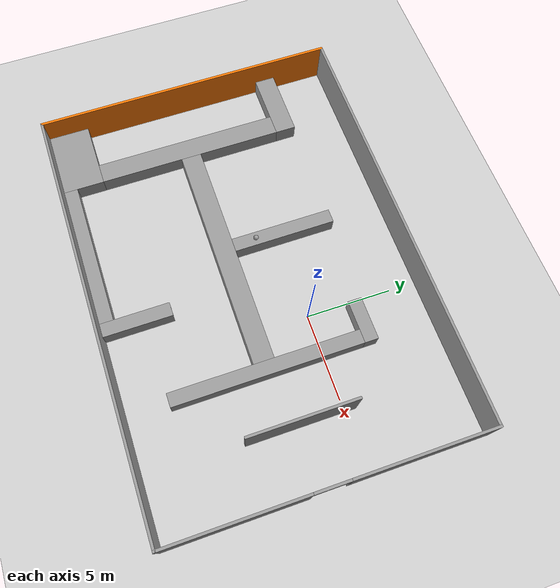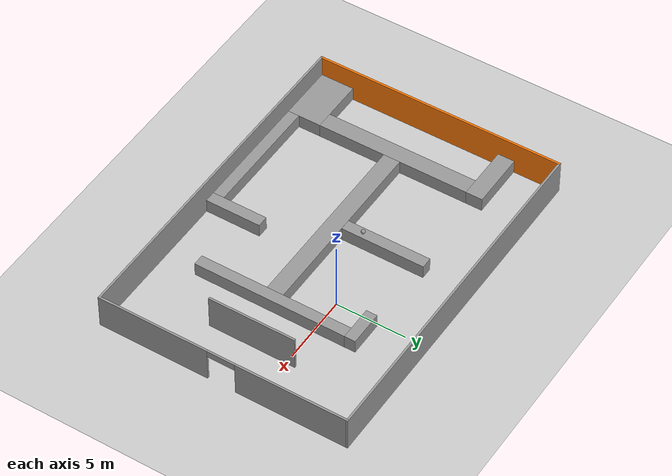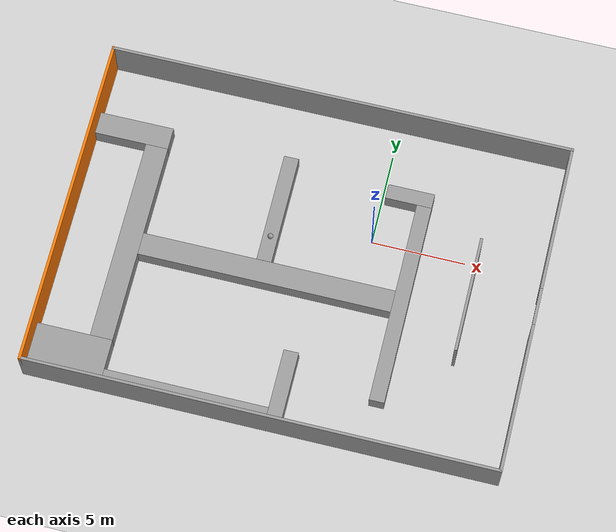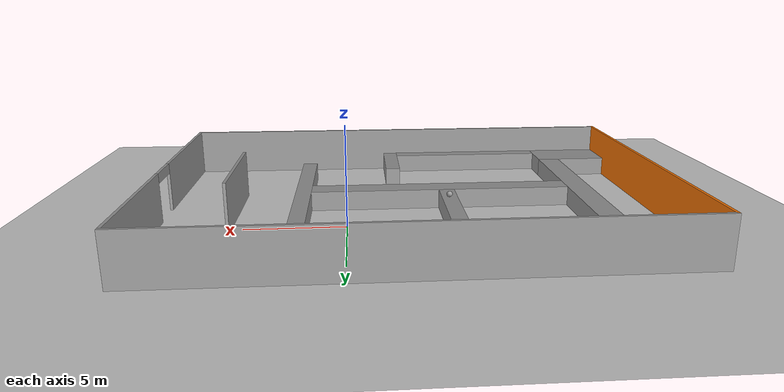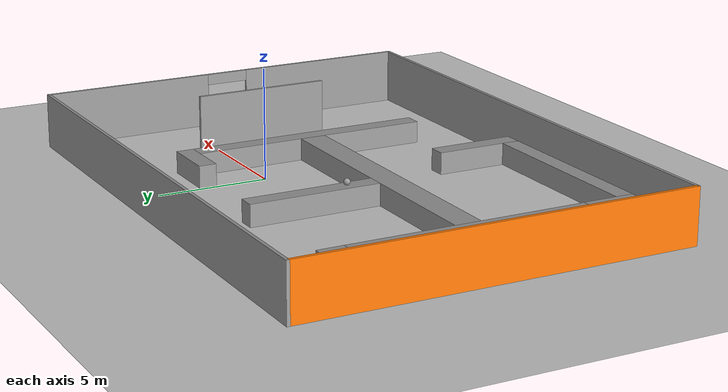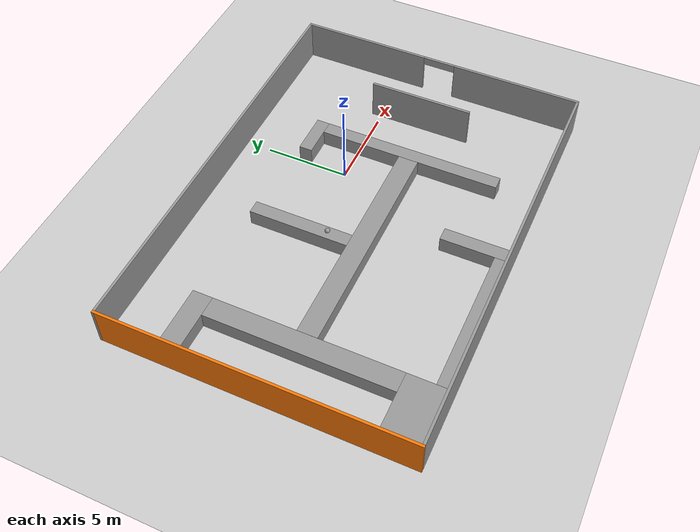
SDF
<sdf version="1.6">
 <world name="default">
  <model name="ground_plane">
   <static>1</static>
   <link name="link">
    <collision name="collision">
     <geometry><plane><normal>0 0 1</normal><size>100 100</size></plane></geometry>
     <surface><friction><ode><mu>100</mu><mu2>50</mu2></ode></friction></surface>
    </collision>
    <visual name="visual">
     <cast_shadows>0</cast_shadows>
     <geometry><plane><normal>0 0 1</normal><size>100 100</size></plane></geometry>
     <material>
      <script><uri>file://media/materials/scripts/gazebo.material</uri><name>Gazebo/Grey</name></script>
     </material>
    </visual>
   </link>
  </model>
  <model name="restaurant">
   <pose>-3.2864 -2.31047 0 0 0 0</pose>
   <link name="Wall_10">
    <collision name="Wall_10_Collision">
     <geometry><box><size>18 0.15 2.5</size></box></geometry>
     <pose>0 0 1.25 0 0 0</pose>
    </collision>
    <visual name="Wall_10_Visual">
     <pose>0 0 1.25 0 0 0</pose>
     <geometry><box><size>18 0.15 2.5</size></box></geometry>
     <material>
      <script><uri>file://media/materials/scripts/gazebo.material</uri><name>Gazebo/Grey</name></script>
      <ambient>0.996078 0.47451 0.0196078 1</ambient>
     </material>
     <meta><layer>0</layer></meta>
    </visual>
    <pose>-12.425 -0.0001 0 0 0 -1.5708</pose>
   </link>
   <link name="Wall_12">
    <collision name="Wall_12_Collision">
     <geometry><box><size>25 0.15 2.5</size></box></geometry>
     <pose>0 0 1.25 0 0 0</pose>
    </collision>
    <visual name="Wall_12_Visual">
     <pose>0 0 1.25 0 0 0</pose>
     <geometry><box><size>25 0.15 2.5</size></box></geometry>
     <material>
      <script><uri>file://media/materials/scripts/gazebo.material</uri><name>Gazebo/Grey</name></script>
      <ambient>1 1 1 1</ambient>
     </material>
     <meta><layer>0</layer></meta>
    </visual>
    <pose>-1e-06 -8.9251 0 0 0 0</pose>
   </link>
   <link name="Wall_14">
    <pose>12.425 1e-05 0 0 0 1.5708</pose>
    <visual name="Wall_14_Visual_0">
     <pose>-5.00641 0 1.25 0 0 0</pose>
     <geometry><box><size>7.98717 0.15 2.5</size></box></geometry>
     <material>
      <script><uri>file://media/materials/scripts/gazebo.material</uri><name>Gazebo/Grey</name></script>
      <ambient>1 1 1 1</ambient>
     </material>
     <meta><layer>0</layer></meta>
    </visual>
    <collision name="Wall_14_Collision_0">
     <geometry><box><size>7.98717 0.15 2.5</size></box></geometry>
     <pose>-5.00641 0 1.25 0 0 0</pose>
    </collision>
    <visual name="Wall_14_Visual_1">
     <pose>4.99359 0 1.25 0 0 0</pose>
     <geometry><box><size>8.01282 0.15 2.5</size></box></geometry>
     <material>
      <script><uri>file://media/materials/scripts/gazebo.material</uri><name>Gazebo/Grey</name></script>
      <ambient>1 1 1 1</ambient>
     </material>
     <meta><layer>0</layer></meta>
    </visual>
    <collision name="Wall_14_Collision_1">
     <geometry><box><size>8.01282 0.15 2.5</size></box></geometry>
     <pose>4.99359 0 1.25 0 0 0</pose>
    </collision>
    <visual name="Wall_14_Visual_2">
     <pose>-0.012825 0 2.25 0 0 0</pose>
     <geometry><box><size>2 0.15 0.5</size></box></geometry>
     <material>
      <script><uri>file://media/materials/scripts/gazebo.material</uri><name>Gazebo/Grey</name></script>
      <ambient>1 1 1 1</ambient>
     </material>
     <meta><layer>0</layer></meta>
    </visual>
    <collision name="Wall_14_Collision_2">
     <geometry><box><size>2 0.15 0.5</size></box></geometry>
     <pose>-0.012825 0 2.25 0 0 0</pose>
    </collision>
   </link>
   <link name="Wall_16">
    <collision name="Wall_16_Collision">
     <geometry><box><size>6.25 0.15 2.5</size></box></geometry>
     <pose>0 0 1.25 0 0 0</pose>
    </collision>
    <visual name="Wall_16_Visual">
     <pose>0 0 1.25 0 0 0</pose>
     <geometry><box><size>6.25 0.15 2.5</size></box></geometry>
     <material>
      <script><uri>file://media/materials/scripts/gazebo.material</uri><name>Gazebo/Grey</name></script>
      <ambient>1 1 1 1</ambient>
     </material>
     <meta><layer>0</layer></meta>
    </visual>
    <pose>8.88051 -0.186574 0 0 0 -1.5708</pose>
   </link>
   <link name="Wall_8">
    <collision name="Wall_8_Collision">
     <geometry><box><size>25 0.15 2.5</size></box></geometry>
     <pose>0 0 1.25 0 0 0</pose>
    </collision>
    <visual name="Wall_8_Visual">
     <pose>0 0 1.25 0 0 0</pose>
     <geometry><box><size>25 0.15 2.5</size></box></geometry>
     <material>
      <script><uri>file://media/materials/scripts/gazebo.material</uri><name>Gazebo/Grey</name></script>
      <ambient>1 1 1 1</ambient>
     </material>
     <meta><layer>0</layer></meta>
    </visual>
    <pose>1e-06 8.925 0 0 0 -3.14159</pose>
   </link>
   <static>1</static>
  </model>
  <model name="path">
   <pose>0.2678 -3.26355 0 0 0 0</pose>
   <link name="Wall_18">
    <pose>-12.5035 0.003409 0 0 0 1.5708</pose>
    <inertial>
     <mass>100</mass>
     <inertia><ixx>1</ixx><ixy>0</ixy><ixz>0</ixz><iyy>1</iyy><iyz>0</iyz><izz>1</izz></inertia>
    </inertial>
    <visual name="Wall_18_Visual">
     <pose>0 0 0.5 0 0 0</pose>
     <geometry><box><size>11 1.2 1</size></box></geometry>
     <material>
      <script><uri>file://media/materials/scripts/gazebo.material</uri><name>Gazebo/Grey</name></script>
      <ambient>0 0 0 1</ambient>
      <shader type="pixel"><normal_map>__default__</normal_map></shader>
      <diffuse>0 0 0 1</diffuse>
      <specular>0 0 0 1</specular>
      <emissive>0 0 0 1</emissive>
     </material>
     <meta><layer>0</layer></meta>
    </visual>
    <collision name="Wall_18_Collision">
     <pose>0 0 0.5 0 0 0</pose>
     <geometry><box><size>11 1.2 1</size></box></geometry>
     <surface>
      <friction>
       <ode><mu>1</mu><mu2>1</mu2><fdir1>0 0 0</fdir1><slip1>0</slip1><slip2>0</slip2></ode>
       <torsional>
        <coefficient>1</coefficient>
        <patch_radius>0</patch_radius>
        <surface_radius>0</surface_radius>
        <use_patch_radius>1</use_patch_radius>
        <ode><slip>0</slip></ode>
       </torsional>
      </friction>
      <bounce><restitution_coefficient>0</restitution_coefficient><threshold>1e+06</threshold></bounce>
      <contact>
       <collide_without_contact>0</collide_without_contact>
       <collide_without_contact_bitmask>1</collide_without_contact_bitmask>
       <collide_bitmask>1</collide_bitmask>
       <ode>
        <soft_cfm>0</soft_cfm>
        <soft_erp>0.2</soft_erp>
        <kp>1e+13</kp>
        <kd>1</kd>
        <max_vel>0.01</max_vel>
        <min_depth>0</min_depth>
       </ode>
       <bullet>
        <split_impulse>1</split_impulse>
        <split_impulse_penetration_threshold>-0.01</split_impulse_penetration_threshold>
        <soft_cfm>0</soft_cfm>
        <soft_erp>0.2</soft_erp>
        <kp>1e+13</kp>
        <kd>1</kd>
       </bullet>
      </contact>
     </surface>
    </collision>
   </link>
   <link name="Wall_20">
    <pose>-5.15319 -0.016904 0 0 0 -0.000489</pose>
    <inertial>
     <mass>1</mass>
     <inertia><ixx>1</ixx><ixy>0</ixy><ixz>0</ixz><iyy>1</iyy><iyz>0</iyz><izz>1</izz></inertia>
    </inertial>
    <visual name="Wall_20_Visual">
     <pose>0 0 0.5 0 0 0</pose>
     <geometry><box><size>13.5 1.2 1</size></box></geometry>
     <material>
      <script><uri>file://media/materials/scripts/gazebo.material</uri><name>Gazebo/Grey</name></script>
      <ambient>0 0 0 1</ambient>
      <shader type="pixel"><normal_map>__default__</normal_map></shader>
      <diffuse>0 0 0 1</diffuse>
      <specular>0 0 0 1</specular>
      <emissive>0 0 0 1</emissive>
     </material>
     <meta><layer>0</layer></meta>
    </visual>
    <collision name="Wall_20_Collision">
     <pose>0 0 0.5 0 0 0</pose>
     <geometry><box><size>13.5 1.2 1</size></box></geometry>
     <surface>
      <friction>
       <ode><mu>1</mu><mu2>1</mu2><fdir1>0 0 0</fdir1><slip1>0</slip1><slip2>0</slip2></ode>
       <torsional>
        <coefficient>1</coefficient>
        <patch_radius>0</patch_radius>
        <surface_radius>0</surface_radius>
        <use_patch_radius>1</use_patch_radius>
        <ode><slip>0</slip></ode>
       </torsional>
      </friction>
      <bounce><restitution_coefficient>0</restitution_coefficient><threshold>1e+06</threshold></bounce>
      <contact>
       <collide_without_contact>0</collide_without_contact>
       <collide_without_contact_bitmask>1</collide_without_contact_bitmask>
       <collide_bitmask>1</collide_bitmask>
       <ode>
        <soft_cfm>0</soft_cfm>
        <soft_erp>0.2</soft_erp>
        <kp>1e+13</kp>
        <kd>1</kd>
        <max_vel>0.01</max_vel>
        <min_depth>0</min_depth>
       </ode>
       <bullet>
        <split_impulse>1</split_impulse>
        <split_impulse_penetration_threshold>-0.01</split_impulse_penetration_threshold>
        <soft_cfm>0</soft_cfm>
        <soft_erp>0.2</soft_erp>
        <kp>1e+13</kp>
        <kd>1</kd>
       </bullet>
      </contact>
     </surface>
    </collision>
   </link>
   <link name="Wall_21">
    <pose>1.99706 0.024718 0 0 0 1.57072</pose>
    <inertial>
     <mass>1</mass>
     <inertia><ixx>1</ixx><ixy>0</ixy><ixz>0</ixz><iyy>1</iyy><iyz>0</iyz><izz>1</izz></inertia>
    </inertial>
    <visual name="Wall_21_Visual">
     <pose>0 0 0.5 0 0 0</pose>
     <geometry><box><size>11 0.8 1</size></box></geometry>
     <material>
      <script><uri>file://media/materials/scripts/gazebo.material</uri><name>Gazebo/Grey</name></script>
      <ambient>0 0 0 1</ambient>
      <shader type="pixel"><normal_map>__default__</normal_map></shader>
      <diffuse>0 0 0 1</diffuse>
      <specular>0 0 0 1</specular>
      <emissive>0 0 0 1</emissive>
     </material>
     <meta><layer>0</layer></meta>
    </visual>
    <collision name="Wall_21_Collision">
     <pose>0 0 0.5 0 0 0</pose>
     <geometry><box><size>11 0.8 1</size></box></geometry>
     <surface>
      <friction>
       <ode><mu>1</mu><mu2>1</mu2><fdir1>0 0 0</fdir1><slip1>0</slip1><slip2>0</slip2></ode>
       <torsional>
        <coefficient>1</coefficient>
        <patch_radius>0</patch_radius>
        <surface_radius>0</surface_radius>
        <use_patch_radius>1</use_patch_radius>
        <ode><slip>0</slip></ode>
       </torsional>
      </friction>
      <bounce><restitution_coefficient>0</restitution_coefficient><threshold>1e+06</threshold></bounce>
      <contact>
       <collide_without_contact>0</collide_without_contact>
       <collide_without_contact_bitmask>1</collide_without_contact_bitmask>
       <collide_bitmask>1</collide_bitmask>
       <ode>
        <soft_cfm>0</soft_cfm>
        <soft_erp>0.2</soft_erp>
        <kp>1e+13</kp>
        <kd>1</kd>
        <max_vel>0.01</max_vel>
        <min_depth>0</min_depth>
       </ode>
       <bullet>
        <split_impulse>1</split_impulse>
        <split_impulse_penetration_threshold>-0.01</split_impulse_penetration_threshold>
        <soft_cfm>0</soft_cfm>
        <soft_erp>0.2</soft_erp>
        <kp>1e+13</kp>
        <kd>1</kd>
       </bullet>
      </contact>
     </surface>
    </collision>
   </link>
   <link name="Wall_25">
    <pose>-5.42538 3.58343 0 0 0 1.5708</pose>
    <inertial>
     <mass>1</mass>
     <inertia><ixx>1</ixx><ixy>0</ixy><ixz>0</ixz><iyy>1</iyy><iyz>0</iyz><izz>1</izz></inertia>
    </inertial>
    <visual name="Wall_25_Visual">
     <pose>0 0 0.5 0 0 0</pose>
     <geometry><box><size>6 0.8 1</size></box></geometry>
     <material>
      <script><uri>file://media/materials/scripts/gazebo.material</uri><name>Gazebo/Grey</name></script>
      <ambient>0 0 0 1</ambient>
      <shader type="pixel"><normal_map>__default__</normal_map></shader>
      <diffuse>0 0 0 1</diffuse>
      <specular>0 0 0 1</specular>
      <emissive>0 0 0 1</emissive>
     </material>
     <meta><layer>0</layer></meta>
    </visual>
    <collision name="Wall_25_Collision">
     <pose>0 0 0.5 0 0 0</pose>
     <geometry><box><size>6 0.8 1</size></box></geometry>
     <surface>
      <friction>
       <ode><mu>1</mu><mu2>1</mu2><fdir1>0 0 0</fdir1><slip1>0</slip1><slip2>0</slip2></ode>
       <torsional>
        <coefficient>1</coefficient>
        <patch_radius>0</patch_radius>
        <surface_radius>0</surface_radius>
        <use_patch_radius>1</use_patch_radius>
        <ode><slip>0</slip></ode>
       </torsional>
      </friction>
      <bounce><restitution_coefficient>0</restitution_coefficient><threshold>1e+06</threshold></bounce>
      <contact>
       <collide_without_contact>0</collide_without_contact>
       <collide_without_contact_bitmask>1</collide_without_contact_bitmask>
       <collide_bitmask>1</collide_bitmask>
       <ode>
        <soft_cfm>0</soft_cfm>
        <soft_erp>0.2</soft_erp>
        <kp>1e+13</kp>
        <kd>1</kd>
        <max_vel>0.01</max_vel>
        <min_depth>0</min_depth>
       </ode>
       <bullet>
        <split_impulse>1</split_impulse>
        <split_impulse_penetration_threshold>-0.01</split_impulse_penetration_threshold>
        <soft_cfm>0</soft_cfm>
        <soft_erp>0.2</soft_erp>
        <kp>1e+13</kp>
        <kd>1</kd>
       </bullet>
      </contact>
     </surface>
    </collision>
   </link>
   <link name="Wall_27">
    <pose>-7.5785 -7.49658 0 0 0 0</pose>
    <inertial>
     <mass>1</mass>
     <inertia><ixx>1</ixx><ixy>0</ixy><ixz>0</ixz><iyy>1</iyy><iyz>0</iyz><izz>1</izz></inertia>
    </inertial>
    <visual name="Wall_27_Visual">
     <pose>0 0 0.5 0 0 0</pose>
     <geometry><box><size>8.65 0.8 1</size></box></geometry>
     <material>
      <script><uri>file://media/materials/scripts/gazebo.material</uri><name>Gazebo/Grey</name></script>
      <ambient>0 0 0 1</ambient>
      <shader type="pixel"><normal_map>__default__</normal_map></shader>
      <diffuse>0 0 0 1</diffuse>
      <specular>0 0 0 1</specular>
      <emissive>0 0 0 1</emissive>
     </material>
     <meta><layer>0</layer></meta>
    </visual>
    <collision name="Wall_27_Collision">
     <pose>0 0 0.5 0 0 0</pose>
     <geometry><box><size>8.65 0.8 1</size></box></geometry>
     <surface>
      <friction>
       <ode><mu>1</mu><mu2>1</mu2><fdir1>0 0 0</fdir1><slip1>0</slip1><slip2>0</slip2></ode>
       <torsional>
        <coefficient>1</coefficient>
        <patch_radius>0</patch_radius>
        <surface_radius>0</surface_radius>
        <use_patch_radius>1</use_patch_radius>
        <ode><slip>0</slip></ode>
       </torsional>
      </friction>
      <bounce><restitution_coefficient>0</restitution_coefficient><threshold>1e+06</threshold></bounce>
      <contact>
       <collide_without_contact>0</collide_without_contact>
       <collide_without_contact_bitmask>1</collide_without_contact_bitmask>
       <collide_bitmask>1</collide_bitmask>
       <ode>
        <soft_cfm>0</soft_cfm>
        <soft_erp>0.2</soft_erp>
        <kp>1e+13</kp>
        <kd>1</kd>
        <max_vel>0.01</max_vel>
        <min_depth>0</min_depth>
       </ode>
       <bullet>
        <split_impulse>1</split_impulse>
        <split_impulse_penetration_threshold>-0.01</split_impulse_penetration_threshold>
        <soft_cfm>0</soft_cfm>
        <soft_erp>0.2</soft_erp>
        <kp>1e+13</kp>
        <kd>1</kd>
       </bullet>
      </contact>
     </surface>
    </collision>
   </link>
   <link name="Wall_31">
    <pose>-2.85351 -5.89658 0 0 0 -1.57079</pose>
    <inertial>
     <mass>1</mass>
     <inertia><ixx>1</ixx><ixy>0</ixy><ixz>0</ixz><iyy>1</iyy><iyz>0</iyz><izz>1</izz></inertia>
    </inertial>
    <visual name="Wall_31_Visual">
     <pose>0 0 0.5 0 0 0</pose>
     <geometry><box><size>4 0.8 1</size></box></geometry>
     <material>
      <script><uri>file://media/materials/scripts/gazebo.material</uri><name>Gazebo/Grey</name></script>
      <ambient>0 0 0 1</ambient>
      <shader type="pixel"><normal_map>__default__</normal_map></shader>
      <diffuse>0 0 0 1</diffuse>
      <specular>0 0 0 1</specular>
      <emissive>0 0 0 1</emissive>
     </material>
     <meta><layer>0</layer></meta>
    </visual>
    <collision name="Wall_31_Collision">
     <pose>0 0 0.5 0 0 0</pose>
     <geometry><box><size>4 0.8 1</size></box></geometry>
     <surface>
      <friction>
       <ode><mu>1</mu><mu2>1</mu2><fdir1>0 0 0</fdir1><slip1>0</slip1><slip2>0</slip2></ode>
       <torsional>
        <coefficient>1</coefficient>
        <patch_radius>0</patch_radius>
        <surface_radius>0</surface_radius>
        <use_patch_radius>1</use_patch_radius>
        <ode><slip>0</slip></ode>
       </torsional>
      </friction>
      <bounce><restitution_coefficient>0</restitution_coefficient><threshold>1e+06</threshold></bounce>
      <contact>
       <collide_without_contact>0</collide_without_contact>
       <collide_without_contact_bitmask>1</collide_without_contact_bitmask>
       <collide_bitmask>1</collide_bitmask>
       <ode>
        <soft_cfm>0</soft_cfm>
        <soft_erp>0.2</soft_erp>
        <kp>1e+13</kp>
        <kd>1</kd>
        <max_vel>0.01</max_vel>
        <min_depth>0</min_depth>
       </ode>
       <bullet>
        <split_impulse>1</split_impulse>
        <split_impulse_penetration_threshold>-0.01</split_impulse_penetration_threshold>
        <soft_cfm>0</soft_cfm>
        <soft_erp>0.2</soft_erp>
        <kp>1e+13</kp>
        <kd>1</kd>
       </bullet>
      </contact>
     </surface>
    </collision>
   </link>
   <link name="Wall_35">
    <pose>1.1473 5.91911 0 0 0 0.000465</pose>
    <inertial>
     <mass>1</mass>
     <inertia><ixx>1</ixx><ixy>0</ixy><ixz>0</ixz><iyy>1</iyy><iyz>0</iyz><izz>1</izz></inertia>
    </inertial>
    <visual name="Wall_35_Visual">
     <pose>0 0 0.5 0 0 0</pose>
     <geometry><box><size>2.5 0.79 1</size></box></geometry>
     <material>
      <script><uri>file://media/materials/scripts/gazebo.material</uri><name>Gazebo/Grey</name></script>
      <ambient>0 0 0 1</ambient>
      <shader type="pixel"><normal_map>__default__</normal_map></shader>
      <diffuse>0 0 0 1</diffuse>
      <specular>0 0 0 1</specular>
      <emissive>0 0 0 1</emissive>
     </material>
     <meta><layer>0</layer></meta>
    </visual>
    <collision name="Wall_35_Collision">
     <pose>0 0 0.5 0 0 0</pose>
     <geometry><box><size>2.5 0.8 1</size></box></geometry>
     <surface>
      <friction>
       <ode><mu>1</mu><mu2>1</mu2><fdir1>0 0 0</fdir1><slip1>0</slip1><slip2>0</slip2></ode>
       <torsional>
        <coefficient>1</coefficient>
        <patch_radius>0</patch_radius>
        <surface_radius>0</surface_radius>
        <use_patch_radius>1</use_patch_radius>
        <ode><slip>0</slip></ode>
       </torsional>
      </friction>
      <bounce><restitution_coefficient>0</restitution_coefficient><threshold>1e+06</threshold></bounce>
      <contact>
       <collide_without_contact>0</collide_without_contact>
       <collide_without_contact_bitmask>1</collide_without_contact_bitmask>
       <collide_bitmask>1</collide_bitmask>
       <ode>
        <soft_cfm>0</soft_cfm>
        <soft_erp>0.2</soft_erp>
        <kp>1e+13</kp>
        <kd>1</kd>
        <max_vel>0.01</max_vel>
        <min_depth>0</min_depth>
       </ode>
       <bullet>
        <split_impulse>1</split_impulse>
        <split_impulse_penetration_threshold>-0.01</split_impulse_penetration_threshold>
        <soft_cfm>0</soft_cfm>
        <soft_erp>0.2</soft_erp>
        <kp>1e+13</kp>
        <kd>1</kd>
       </bullet>
      </contact>
     </surface>
    </collision>
   </link>
   <link name="Wall_44">
    <pose>-13.9035 6.10342 0 0 0 3.14159</pose>
    <inertial>
     <mass>1</mass>
     <inertia><ixx>1</ixx><ixy>0</ixy><ixz>0</ixz><iyy>1</iyy><iyz>0</iyz><izz>1</izz></inertia>
    </inertial>
    <visual name="Wall_44_Visual">
     <pose>0 0 0.5 0 0 0</pose>
     <geometry><box><size>4 1.2 1</size></box></geometry>
     <material>
      <script><uri>file://media/materials/scripts/gazebo.material</uri><name>Gazebo/Grey</name></script>
      <ambient>0 0 0 1</ambient>
      <shader type="pixel"><normal_map>__default__</normal_map></shader>
      <diffuse>0 0 0 1</diffuse>
      <specular>0 0 0 1</specular>
      <emissive>0 0 0 1</emissive>
     </material>
     <meta><layer>0</layer></meta>
    </visual>
    <collision name="Wall_44_Collision">
     <pose>0 0 0.5 0 0 0</pose>
     <geometry><box><size>4 1.2 1</size></box></geometry>
     <surface>
      <friction>
       <ode><mu>1</mu><mu2>1</mu2><fdir1>0 0 0</fdir1><slip1>0</slip1><slip2>0</slip2></ode>
       <torsional>
        <coefficient>1</coefficient>
        <patch_radius>0</patch_radius>
        <surface_radius>0</surface_radius>
        <use_patch_radius>1</use_patch_radius>
        <ode><slip>0</slip></ode>
       </torsional>
      </friction>
      <bounce><restitution_coefficient>0</restitution_coefficient><threshold>1e+06</threshold></bounce>
      <contact>
       <collide_without_contact>0</collide_without_contact>
       <collide_without_contact_bitmask>1</collide_without_contact_bitmask>
       <collide_bitmask>1</collide_bitmask>
       <ode>
        <soft_cfm>0</soft_cfm>
        <soft_erp>0.2</soft_erp>
        <kp>1e+13</kp>
        <kd>1</kd>
        <max_vel>0.01</max_vel>
        <min_depth>0</min_depth>
       </ode>
       <bullet>
        <split_impulse>1</split_impulse>
        <split_impulse_penetration_threshold>-0.01</split_impulse_penetration_threshold>
        <soft_cfm>0</soft_cfm>
        <soft_erp>0.2</soft_erp>
        <kp>1e+13</kp>
        <kd>1</kd>
       </bullet>
      </contact>
     </surface>
    </collision>
   </link>
   <link name="Wall_62">
    <pose>-13.9035 -6.69658 0 0 0 0</pose>
    <inertial>
     <mass>1</mass>
     <inertia><ixx>1</ixx><ixy>0</ixy><ixz>0</ixz><iyy>1</iyy><iyz>0</iyz><izz>1</izz></inertia>
    </inertial>
    <visual name="Wall_62_Visual">
     <pose>0 0 0.5 0 0 0</pose>
     <geometry><box><size>4 2.4 1</size></box></geometry>
     <material>
      <script><uri>file://media/materials/scripts/gazebo.material</uri><name>Gazebo/Grey</name></script>
      <ambient>0 0 0 1</ambient>
      <shader type="pixel"><normal_map>__default__</normal_map></shader>
      <diffuse>0 0 0 1</diffuse>
      <specular>0 0 0 1</specular>
      <emissive>0 0 0 1</emissive>
     </material>
     <meta><layer>0</layer></meta>
    </visual>
    <collision name="Wall_62_Collision">
     <pose>0 0 0.5 0 0 0</pose>
     <geometry><box><size>4 2.4 1</size></box></geometry>
     <surface>
      <friction>
       <ode><mu>1</mu><mu2>1</mu2><fdir1>0 0 0</fdir1><slip1>0</slip1><slip2>0</slip2></ode>
       <torsional>
        <coefficient>1</coefficient>
        <patch_radius>0</patch_radius>
        <surface_radius>0</surface_radius>
        <use_patch_radius>1</use_patch_radius>
        <ode><slip>0</slip></ode>
       </torsional>
      </friction>
      <bounce><restitution_coefficient>0</restitution_coefficient><threshold>1e+06</threshold></bounce>
      <contact>
       <collide_without_contact>0</collide_without_contact>
       <collide_without_contact_bitmask>1</collide_without_contact_bitmask>
       <collide_bitmask>1</collide_bitmask>
       <ode>
        <soft_cfm>0</soft_cfm>
        <soft_erp>0.2</soft_erp>
        <kp>1e+13</kp>
        <kd>1</kd>
        <max_vel>0.01</max_vel>
        <min_depth>0</min_depth>
       </ode>
       <bullet>
        <split_impulse>1</split_impulse>
        <split_impulse_penetration_threshold>-0.01</split_impulse_penetration_threshold>
        <soft_cfm>0</soft_cfm>
        <soft_erp>0.2</soft_erp>
        <kp>1e+13</kp>
        <kd>1</kd>
       </bullet>
      </contact>
     </surface>
    </collision>
   </link>
   <static>1</static>
  </model>
  <model name="ball">
   <link name="link_0">
    <pose>-5.14 -1.33 1.15 0 0 0</pose>
    <inertial>
     <mass>1</mass>
     <inertia><ixx>0.1</ixx><ixy>0</ixy><ixz>0</ixz><iyy>0.1</iyy><iyz>0</iyz><izz>0.1</izz></inertia>
    </inertial>
    <visual name="visual">
     <geometry><sphere><radius>0.15</radius></sphere></geometry>
     <material>
      <lighting>1</lighting>
      <script><uri>file://media/materials/scripts/gazebo.material</uri><name>Gazebo/Grey</name></script>
      <shader type="pixel"><normal_map>__default__</normal_map></shader>
      <ambient>1 1 1 1</ambient>
      <diffuse>1 1 1 1</diffuse>
      <specular>1 1 1 1</specular>
      <emissive>1 1 1 1</emissive>
     </material>
    </visual>
    <collision name="collision">
     <geometry><sphere><radius>0.15</radius></sphere></geometry>
     <surface>
      <friction>
       <ode><mu>1</mu><mu2>1</mu2><fdir1>0 0 0</fdir1><slip1>0</slip1><slip2>0</slip2></ode>
       <torsional>
        <coefficient>1</coefficient>
        <patch_radius>0</patch_radius>
        <surface_radius>0</surface_radius>
        <use_patch_radius>1</use_patch_radius>
        <ode><slip>0</slip></ode>
       </torsional>
      </friction>
      <bounce><restitution_coefficient>0</restitution_coefficient><threshold>1e+06</threshold></bounce>
      <contact>
       <collide_without_contact>0</collide_without_contact>
       <collide_without_contact_bitmask>1</collide_without_contact_bitmask>
       <collide_bitmask>1</collide_bitmask>
       <ode>
        <soft_cfm>0</soft_cfm>
        <soft_erp>0.2</soft_erp>
        <kp>1e+13</kp>
        <kd>1</kd>
        <max_vel>0.01</max_vel>
        <min_depth>0</min_depth>
       </ode>
       <bullet>
        <split_impulse>1</split_impulse>
        <split_impulse_penetration_threshold>-0.01</split_impulse_penetration_threshold>
        <soft_cfm>0</soft_cfm>
        <soft_erp>0.2</soft_erp>
        <kp>1e+13</kp>
        <kd>1</kd>
       </bullet>
      </contact>
     </surface>
    </collision>
   </link>
   <static>0</static>
  </model>
 </world>
</sdf>
